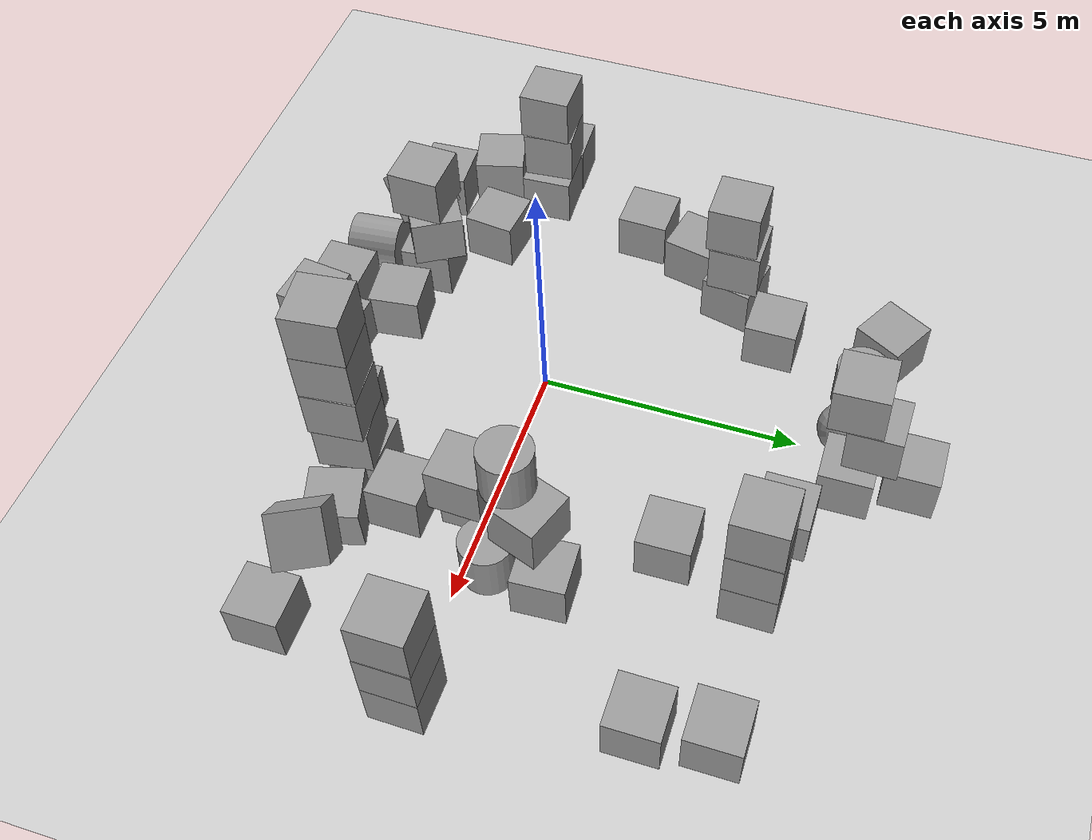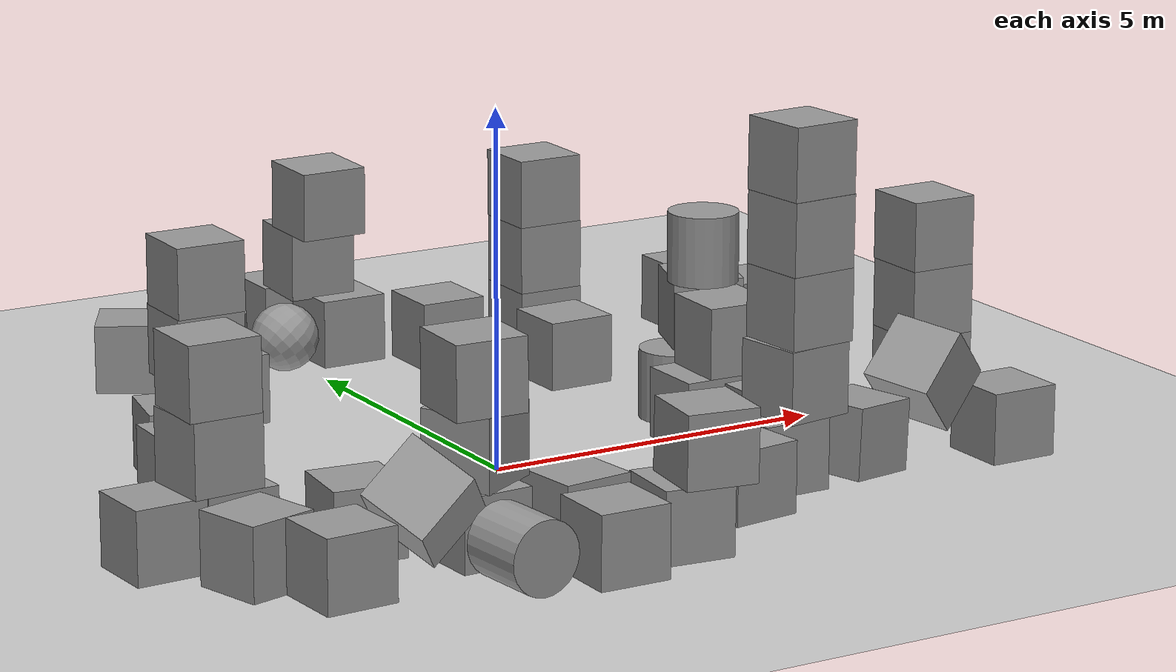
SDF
<sdf version="1.7">
 <world name="default">
  <light name="sun" type="directional">
   <pose>0 0 10 0 -0 0</pose>
   <diffuse>0.8 0.8 0.8 1</diffuse>
   <specular>0.2 0.2 0.2 1</specular>
   <attenuation>
    <range>1000</range>
    <constant>0.9</constant>
    <linear>0.01</linear>
    <quadratic>0.001</quadratic>
   </attenuation>
   <direction>-0.5 0.1 -0.9</direction>
   <spot><inner_angle>0</inner_angle><outer_angle>0</outer_angle><falloff>0</falloff></spot>
  </light>
  <model name="ground_plane">
   <static>1</static>
   <link name="link">
    <collision name="collision">
     <geometry><plane><normal>0 0 1</normal><size>100 100</size></plane></geometry>
     <surface>
      <contact><collide_bitmask>65535</collide_bitmask></contact>
      <friction><ode><mu>100</mu><mu2>50</mu2></ode></friction>
     </surface>
    </collision>
    <visual name="visual">
     <cast_shadows>0</cast_shadows>
     <geometry><plane><normal>0 0 1</normal><size>100 100</size></plane></geometry>
     <material>
      <script><uri>file://media/materials/scripts/gazebo.material</uri><name>Gazebo/Grey</name></script>
     </material>
    </visual>
   </link>
  </model>
  <gravity>0 0 -9.8</gravity>
  <magnetic_field>6e-06 2.3e-05 -4.2e-05</magnetic_field>
  <atmosphere type="adiabatic"/>
  <physics type="ode">
   <max_step_size>0.001</max_step_size>
   <real_time_factor>1</real_time_factor>
   <real_time_update_rate>1000</real_time_update_rate>
  </physics>
  <scene><ambient>0.4 0.4 0.4 1</ambient><background>0.7 0.7 0.7 1</background><shadows>1</shadows></scene>
  <spherical_coordinates>
   <surface_model>EARTH_WGS84</surface_model>
   <latitude_deg>0</latitude_deg>
   <longitude_deg>0</longitude_deg>
   <elevation>0</elevation>
   <heading_deg>0</heading_deg>
  </spherical_coordinates>
  <model name="unit_box">
   <pose>3.54485 -1.46317 0.52211 -0.014819 -0.029988 -0.004398</pose>
   <link name="link">
    <inertial>
     <mass>1</mass>
     <inertia>
      <ixx>0.166667</ixx>
      <ixy>0</ixy>
      <ixz>0</ixz>
      <iyy>0.166667</iyy>
      <iyz>0</iyz>
      <izz>0.166667</izz>
     </inertia>
    </inertial>
    <collision name="collision"><geometry><box><size>1 1 1</size></box></geometry></collision>
    <visual name="visual">
     <geometry><box><size>1 1 1</size></box></geometry>
     <material>
      <script><name>Gazebo/Grey</name><uri>file://media/materials/scripts/gazebo.material</uri></script>
     </material>
    </visual>
   </link>
  </model>
  <model name="unit_box_0">
   <pose>2.86804 -2.49356 0.499534 -3e-06 0.000959 0.013659</pose>
   <link name="link">
    <inertial>
     <mass>1</mass>
     <inertia>
      <ixx>0.166667</ixx>
      <ixy>0</ixy>
      <ixz>0</ixz>
      <iyy>0.166667</iyy>
      <iyz>0</iyz>
      <izz>0.166667</izz>
     </inertia>
    </inertial>
    <collision name="collision"><geometry><box><size>1 1 1</size></box></geometry></collision>
    <visual name="visual">
     <geometry><box><size>1 1 1</size></box></geometry>
     <material>
      <script><name>Gazebo/Grey</name><uri>file://media/materials/scripts/gazebo.material</uri></script>
     </material>
    </visual>
   </link>
  </model>
  <model name="unit_box_1">
   <pose>1.86386 -3.19897 0.5 0 -0 0.124648</pose>
   <link name="link">
    <inertial>
     <mass>1</mass>
     <inertia>
      <ixx>0.166667</ixx>
      <ixy>0</ixy>
      <ixz>0</ixz>
      <iyy>0.166667</iyy>
      <iyz>0</iyz>
      <izz>0.166667</izz>
     </inertia>
    </inertial>
    <collision name="collision"><geometry><box><size>1 1 1</size></box></geometry></collision>
    <visual name="visual">
     <geometry><box><size>1 1 1</size></box></geometry>
     <material>
      <script><name>Gazebo/Grey</name><uri>file://media/materials/scripts/gazebo.material</uri></script>
     </material>
    </visual>
   </link>
  </model>
  <model name="unit_box_2">
   <pose>3.0979 -0.23145 0.500032 -0.000241 0.000178 -0.00261</pose>
   <link name="link">
    <inertial>
     <mass>1</mass>
     <inertia>
      <ixx>0.166667</ixx>
      <ixy>0</ixy>
      <ixz>0</ixz>
      <iyy>0.166667</iyy>
      <iyz>0</iyz>
      <izz>0.166667</izz>
     </inertia>
    </inertial>
    <collision name="collision"><geometry><box><size>1 1 1</size></box></geometry></collision>
    <visual name="visual">
     <geometry><box><size>1 1 1</size></box></geometry>
     <material>
      <script><name>Gazebo/Grey</name><uri>file://media/materials/scripts/gazebo.material</uri></script>
     </material>
    </visual>
   </link>
  </model>
  <model name="unit_box_3">
   <pose>4.41609 1.53859 0.5 -3e-06 4e-06 0.05292</pose>
   <link name="link">
    <inertial>
     <mass>1</mass>
     <inertia>
      <ixx>0.166667</ixx>
      <ixy>0</ixy>
      <ixz>0</ixz>
      <iyy>0.166667</iyy>
      <iyz>0</iyz>
      <izz>0.166667</izz>
     </inertia>
    </inertial>
    <collision name="collision"><geometry><box><size>1 1 1</size></box></geometry></collision>
    <visual name="visual">
     <geometry><box><size>1 1 1</size></box></geometry>
     <material>
      <script><name>Gazebo/Grey</name><uri>file://media/materials/scripts/gazebo.material</uri></script>
     </material>
    </visual>
   </link>
  </model>
  <model name="unit_cylinder">
   <pose>4.29981 0.427955 0.499249 3.9e-05 -0.000778 0.215385</pose>
   <link name="link">
    <inertial>
     <mass>1</mass>
     <inertia><ixx>0.145833</ixx><ixy>0</ixy><ixz>0</ixz><iyy>0.145833</iyy><iyz>0</iyz><izz>0.125</izz></inertia>
    </inertial>
    <collision name="collision">
     <geometry><cylinder><radius>0.5</radius><length>1</length></cylinder></geometry>
    </collision>
    <visual name="visual">
     <geometry><cylinder><radius>0.5</radius><length>1</length></cylinder></geometry>
     <material>
      <script><name>Gazebo/Grey</name><uri>file://media/materials/scripts/gazebo.material</uri></script>
     </material>
    </visual>
   </link>
  </model>
  <model name="unit_box_4">
   <pose>3.04265 3.35976 0.499995 0 -1e-05 0.014778</pose>
   <link name="link">
    <inertial>
     <mass>1</mass>
     <inertia>
      <ixx>0.166667</ixx>
      <ixy>0</ixy>
      <ixz>0</ixz>
      <iyy>0.166667</iyy>
      <iyz>0</iyz>
      <izz>0.166667</izz>
     </inertia>
    </inertial>
    <collision name="collision"><geometry><box><size>1 1 1</size></box></geometry></collision>
    <visual name="visual">
     <geometry><box><size>1 1 1</size></box></geometry>
     <material>
      <script><name>Gazebo/Grey</name><uri>file://media/materials/scripts/gazebo.material</uri></script>
     </material>
    </visual>
   </link>
  </model>
  <model name="unit_box_5">
   <pose>1.95398 5.19038 0.499995 1e-05 0 -7.1e-05</pose>
   <link name="link">
    <inertial>
     <mass>1</mass>
     <inertia>
      <ixx>0.166667</ixx>
      <ixy>0</ixy>
      <ixz>0</ixz>
      <iyy>0.166667</iyy>
      <iyz>0</iyz>
      <izz>0.166667</izz>
     </inertia>
    </inertial>
    <collision name="collision"><geometry><box><size>1 1 1</size></box></geometry></collision>
    <visual name="visual">
     <geometry><box><size>1 1 1</size></box></geometry>
     <material>
      <script><name>Gazebo/Grey</name><uri>file://media/materials/scripts/gazebo.material</uri></script>
     </material>
    </visual>
   </link>
  </model>
  <model name="unit_box_6">
   <pose>0.760691 6.06198 0.499988 -3.7e-05 1.3e-05 0.008285</pose>
   <link name="link">
    <inertial>
     <mass>1</mass>
     <inertia>
      <ixx>0.166667</ixx>
      <ixy>0</ixy>
      <ixz>0</ixz>
      <iyy>0.166667</iyy>
      <iyz>0</iyz>
      <izz>0.166667</izz>
     </inertia>
    </inertial>
    <collision name="collision"><geometry><box><size>1 1 1</size></box></geometry></collision>
    <visual name="visual">
     <geometry><box><size>1 1 1</size></box></geometry>
     <material>
      <script><name>Gazebo/Grey</name><uri>file://media/materials/scripts/gazebo.material</uri></script>
     </material>
    </visual>
   </link>
  </model>
  <model name="unit_sphere">
   <pose>-0.271245 5.79348 0.5 0.913646 -0.11949 1.68756</pose>
   <link name="link">
    <inertial>
     <mass>1</mass>
     <inertia><ixx>0.1</ixx><ixy>0</ixy><ixz>0</ixz><iyy>0.1</iyy><iyz>0</iyz><izz>0.1</izz></inertia>
    </inertial>
    <collision name="collision"><geometry><sphere><radius>0.5</radius></sphere></geometry></collision>
    <visual name="visual">
     <geometry><sphere><radius>0.5</radius></sphere></geometry>
     <material>
      <script><name>Gazebo/Grey</name><uri>file://media/materials/scripts/gazebo.material</uri></script>
     </material>
    </visual>
   </link>
  </model>
  <model name="unit_cylinder_0">
   <pose>-1.39732 5.88022 0.5 0 0 -0.09418</pose>
   <link name="link">
    <inertial>
     <mass>1</mass>
     <inertia><ixx>0.145833</ixx><ixy>0</ixy><ixz>0</ixz><iyy>0.145833</iyy><iyz>0</iyz><izz>0.125</izz></inertia>
    </inertial>
    <collision name="collision">
     <geometry><cylinder><radius>0.5</radius><length>1</length></cylinder></geometry>
    </collision>
    <visual name="visual">
     <geometry><cylinder><radius>0.5</radius><length>1</length></cylinder></geometry>
     <material>
      <script><name>Gazebo/Grey</name><uri>file://media/materials/scripts/gazebo.material</uri></script>
     </material>
    </visual>
   </link>
  </model>
  <model name="unit_box_7">
   <pose>-2.15902 4.01624 0.499971 -0 -0 -0.013793</pose>
   <link name="link">
    <inertial>
     <mass>1</mass>
     <inertia>
      <ixx>0.166667</ixx>
      <ixy>0</ixy>
      <ixz>0</ixz>
      <iyy>0.166667</iyy>
      <iyz>0</iyz>
      <izz>0.166667</izz>
     </inertia>
    </inertial>
    <collision name="collision"><geometry><box><size>1 1 1</size></box></geometry></collision>
    <visual name="visual">
     <geometry><box><size>1 1 1</size></box></geometry>
     <material>
      <script><name>Gazebo/Grey</name><uri>file://media/materials/scripts/gazebo.material</uri></script>
     </material>
    </visual>
   </link>
  </model>
  <model name="unit_box_8">
   <pose>-2.99168 3.01634 0.499981 8e-06 -5e-06 -0.219019</pose>
   <link name="link">
    <inertial>
     <mass>1</mass>
     <inertia>
      <ixx>0.166667</ixx>
      <ixy>0</ixy>
      <ixz>0</ixz>
      <iyy>0.166667</iyy>
      <iyz>0</iyz>
      <izz>0.166667</izz>
     </inertia>
    </inertial>
    <collision name="collision"><geometry><box><size>1 1 1</size></box></geometry></collision>
    <visual name="visual">
     <geometry><box><size>1 1 1</size></box></geometry>
     <material>
      <script><name>Gazebo/Grey</name><uri>file://media/materials/scripts/gazebo.material</uri></script>
     </material>
    </visual>
   </link>
  </model>
  <model name="unit_box_9">
   <pose>-4.21059 0.855381 0.5 0 -0 -0.039085</pose>
   <link name="link">
    <inertial>
     <mass>1</mass>
     <inertia>
      <ixx>0.166667</ixx>
      <ixy>0</ixy>
      <ixz>0</ixz>
      <iyy>0.166667</iyy>
      <iyz>0</iyz>
      <izz>0.166667</izz>
     </inertia>
    </inertial>
    <collision name="collision"><geometry><box><size>1 1 1</size></box></geometry></collision>
    <visual name="visual">
     <geometry><box><size>1 1 1</size></box></geometry>
     <material>
      <script><name>Gazebo/Grey</name><uri>file://media/materials/scripts/gazebo.material</uri></script>
     </material>
    </visual>
   </link>
  </model>
  <model name="unit_box_10">
   <pose>-3.7913 2.01757 0.499995 1e-05 -0 -0.201712</pose>
   <link name="link">
    <inertial>
     <mass>1</mass>
     <inertia>
      <ixx>0.166667</ixx>
      <ixy>0</ixy>
      <ixz>0</ixz>
      <iyy>0.166667</iyy>
      <iyz>0</iyz>
      <izz>0.166667</izz>
     </inertia>
    </inertial>
    <collision name="collision"><geometry><box><size>1 1 1</size></box></geometry></collision>
    <visual name="visual">
     <geometry><box><size>1 1 1</size></box></geometry>
     <material>
      <script><name>Gazebo/Grey</name><uri>file://media/materials/scripts/gazebo.material</uri></script>
     </material>
    </visual>
   </link>
  </model>
  <model name="unit_box_11">
   <pose>-5.77779 -1.48193 0.499961 -2.2e-05 3e-05 0.042203</pose>
   <link name="link">
    <inertial>
     <mass>1</mass>
     <inertia>
      <ixx>0.166667</ixx>
      <ixy>0</ixy>
      <ixz>0</ixz>
      <iyy>0.166667</iyy>
      <iyz>0</iyz>
      <izz>0.166667</izz>
     </inertia>
    </inertial>
    <collision name="collision"><geometry><box><size>1 1 1</size></box></geometry></collision>
    <visual name="visual">
     <geometry><box><size>1 1 1</size></box></geometry>
     <material>
      <script><name>Gazebo/Grey</name><uri>file://media/materials/scripts/gazebo.material</uri></script>
     </material>
    </visual>
   </link>
  </model>
  <model name="unit_box_12">
   <pose>-4.99761 -1.50152 2.49992 1e-06 -4.9e-05 0.002113</pose>
   <link name="link">
    <inertial>
     <mass>1</mass>
     <inertia>
      <ixx>0.166667</ixx>
      <ixy>0</ixy>
      <ixz>0</ixz>
      <iyy>0.166667</iyy>
      <iyz>0</iyz>
      <izz>0.166667</izz>
     </inertia>
    </inertial>
    <collision name="collision"><geometry><box><size>1 1 1</size></box></geometry></collision>
    <visual name="visual">
     <geometry><box><size>1 1 1</size></box></geometry>
     <material>
      <script><name>Gazebo/Grey</name><uri>file://media/materials/scripts/gazebo.material</uri></script>
     </material>
    </visual>
   </link>
  </model>
  <model name="unit_box_13">
   <pose>-0.717558 -3.26427 0.5 -1.5708 -0 0.114412</pose>
   <link name="link">
    <inertial>
     <mass>1</mass>
     <inertia>
      <ixx>0.166667</ixx>
      <ixy>0</ixy>
      <ixz>0</ixz>
      <iyy>0.166667</iyy>
      <iyz>0</iyz>
      <izz>0.166667</izz>
     </inertia>
    </inertial>
    <collision name="collision"><geometry><box><size>1 1 1</size></box></geometry></collision>
    <visual name="visual">
     <geometry><box><size>1 1 1</size></box></geometry>
     <material>
      <script><name>Gazebo/Grey</name><uri>file://media/materials/scripts/gazebo.material</uri></script>
     </material>
    </visual>
   </link>
  </model>
  <model name="unit_box_14">
   <pose>-0.89779 -4.54471 0.499995 -0 1e-05 -0.009906</pose>
   <link name="link">
    <inertial>
     <mass>1</mass>
     <inertia>
      <ixx>0.166667</ixx>
      <ixy>0</ixy>
      <ixz>0</ixz>
      <iyy>0.166667</iyy>
      <iyz>0</iyz>
      <izz>0.166667</izz>
     </inertia>
    </inertial>
    <collision name="collision"><geometry><box><size>1 1 1</size></box></geometry></collision>
    <visual name="visual">
     <geometry><box><size>1 1 1</size></box></geometry>
     <material>
      <script><name>Gazebo/Grey</name><uri>file://media/materials/scripts/gazebo.material</uri></script>
     </material>
    </visual>
   </link>
  </model>
  <model name="unit_box_15">
   <pose>-2.06437 -3.10619 0.499997 6e-06 -0 0.049704</pose>
   <link name="link">
    <inertial>
     <mass>1</mass>
     <inertia>
      <ixx>0.166667</ixx>
      <ixy>0</ixy>
      <ixz>0</ixz>
      <iyy>0.166667</iyy>
      <iyz>0</iyz>
      <izz>0.166667</izz>
     </inertia>
    </inertial>
    <collision name="collision"><geometry><box><size>1 1 1</size></box></geometry></collision>
    <visual name="visual">
     <geometry><box><size>1 1 1</size></box></geometry>
     <material>
      <script><name>Gazebo/Grey</name><uri>file://media/materials/scripts/gazebo.material</uri></script>
     </material>
    </visual>
   </link>
  </model>
  <model name="unit_box_16">
   <pose>-3.25793 -2.115 0.5 0 0 -0.109062</pose>
   <link name="link">
    <inertial>
     <mass>1</mass>
     <inertia>
      <ixx>0.166667</ixx>
      <ixy>0</ixy>
      <ixz>0</ixz>
      <iyy>0.166667</iyy>
      <iyz>0</iyz>
      <izz>0.166667</izz>
     </inertia>
    </inertial>
    <collision name="collision"><geometry><box><size>1 1 1</size></box></geometry></collision>
    <visual name="visual">
     <geometry><box><size>1 1 1</size></box></geometry>
     <material>
      <script><name>Gazebo/Grey</name><uri>file://media/materials/scripts/gazebo.material</uri></script>
     </material>
    </visual>
   </link>
  </model>
  <model name="unit_box_17">
   <pose>-4.25409 -3.61877 0.500002 -1e-06 -6e-06 0.05154</pose>
   <link name="link">
    <inertial>
     <mass>1</mass>
     <inertia>
      <ixx>0.166667</ixx>
      <ixy>0</ixy>
      <ixz>0</ixz>
      <iyy>0.166667</iyy>
      <iyz>0</iyz>
      <izz>0.166667</izz>
     </inertia>
    </inertial>
    <collision name="collision"><geometry><box><size>1 1 1</size></box></geometry></collision>
    <visual name="visual">
     <geometry><box><size>1 1 1</size></box></geometry>
     <material>
      <script><name>Gazebo/Grey</name><uri>file://media/materials/scripts/gazebo.material</uri></script>
     </material>
    </visual>
   </link>
  </model>
  <model name="unit_box_18">
   <pose>6.41642 3.81657 0.499995 -1e-05 -0 -0</pose>
   <link name="link">
    <inertial>
     <mass>1</mass>
     <inertia>
      <ixx>0.166667</ixx>
      <ixy>0</ixy>
      <ixz>0</ixz>
      <iyy>0.166667</iyy>
      <iyz>0</iyz>
      <izz>0.166667</izz>
     </inertia>
    </inertial>
    <collision name="collision"><geometry><box><size>1 1 1</size></box></geometry></collision>
    <visual name="visual">
     <geometry><box><size>1 1 1</size></box></geometry>
     <material>
      <script><name>Gazebo/Grey</name><uri>file://media/materials/scripts/gazebo.material</uri></script>
     </material>
    </visual>
   </link>
  </model>
  <model name="unit_box_19">
   <pose>6.25838 5.09968 0.499995 0 1e-05 0</pose>
   <link name="link">
    <inertial>
     <mass>1</mass>
     <inertia>
      <ixx>0.166667</ixx>
      <ixy>0</ixy>
      <ixz>0</ixz>
      <iyy>0.166667</iyy>
      <iyz>0</iyz>
      <izz>0.166667</izz>
     </inertia>
    </inertial>
    <collision name="collision"><geometry><box><size>1 1 1</size></box></geometry></collision>
    <visual name="visual">
     <geometry><box><size>1 1 1</size></box></geometry>
     <material>
      <script><name>Gazebo/Grey</name><uri>file://media/materials/scripts/gazebo.material</uri></script>
     </material>
    </visual>
   </link>
  </model>
  <model name="unit_box_20">
   <pose>7.00111 -0.002061 0.499996 3e-06 -5e-06 -0.012454</pose>
   <link name="link">
    <inertial>
     <mass>1</mass>
     <inertia>
      <ixx>0.166667</ixx>
      <ixy>0</ixy>
      <ixz>0</ixz>
      <iyy>0.166667</iyy>
      <iyz>0</iyz>
      <izz>0.166667</izz>
     </inertia>
    </inertial>
    <collision name="collision"><geometry><box><size>1 1 1</size></box></geometry></collision>
    <visual name="visual">
     <geometry><box><size>1 1 1</size></box></geometry>
     <material>
      <script><name>Gazebo/Grey</name><uri>file://media/materials/scripts/gazebo.material</uri></script>
     </material>
    </visual>
   </link>
  </model>
  <model name="unit_box_21">
   <pose>6.99981 -0.005387 1.49999 -1e-06 1e-05 -0.010588</pose>
   <link name="link">
    <inertial>
     <mass>1</mass>
     <inertia>
      <ixx>0.166667</ixx>
      <ixy>0</ixy>
      <ixz>0</ixz>
      <iyy>0.166667</iyy>
      <iyz>0</iyz>
      <izz>0.166667</izz>
     </inertia>
    </inertial>
    <collision name="collision"><geometry><box><size>1 1 1</size></box></geometry></collision>
    <visual name="visual">
     <geometry><box><size>1 1 1</size></box></geometry>
     <material>
      <script><name>Gazebo/Grey</name><uri>file://media/materials/scripts/gazebo.material</uri></script>
     </material>
    </visual>
   </link>
  </model>
  <model name="unit_box_22">
   <pose>6.98836 -0.007519 2.49999 7e-06 1e-05 -0.002652</pose>
   <link name="link">
    <inertial>
     <mass>1</mass>
     <inertia>
      <ixx>0.166667</ixx>
      <ixy>0</ixy>
      <ixz>0</ixz>
      <iyy>0.166667</iyy>
      <iyz>0</iyz>
      <izz>0.166667</izz>
     </inertia>
    </inertial>
    <collision name="collision"><geometry><box><size>1 1 1</size></box></geometry></collision>
    <visual name="visual">
     <geometry><box><size>1 1 1</size></box></geometry>
     <material>
      <script><name>Gazebo/Grey</name><uri>file://media/materials/scripts/gazebo.material</uri></script>
     </material>
    </visual>
   </link>
  </model>
  <model name="unit_box_23">
   <pose>3.5021 5.00241 0.500024 4.5e-05 -3e-06 -0.007851</pose>
   <link name="link">
    <inertial>
     <mass>1</mass>
     <inertia>
      <ixx>0.166667</ixx>
      <ixy>0</ixy>
      <ixz>0</ixz>
      <iyy>0.166667</iyy>
      <iyz>0</iyz>
      <izz>0.166667</izz>
     </inertia>
    </inertial>
    <collision name="collision"><geometry><box><size>1 1 1</size></box></geometry></collision>
    <visual name="visual">
     <geometry><box><size>1 1 1</size></box></geometry>
     <material>
      <script><name>Gazebo/Grey</name><uri>file://media/materials/scripts/gazebo.material</uri></script>
     </material>
    </visual>
   </link>
  </model>
  <model name="unit_box_24">
   <pose>3.49969 5.00237 1.50002 4.5e-05 -3e-06 -0.008608</pose>
   <link name="link">
    <inertial>
     <mass>1</mass>
     <inertia>
      <ixx>0.166667</ixx>
      <ixy>0</ixy>
      <ixz>0</ixz>
      <iyy>0.166667</iyy>
      <iyz>0</iyz>
      <izz>0.166667</izz>
     </inertia>
    </inertial>
    <collision name="collision"><geometry><box><size>1 1 1</size></box></geometry></collision>
    <visual name="visual">
     <geometry><box><size>1 1 1</size></box></geometry>
     <material>
      <script><name>Gazebo/Grey</name><uri>file://media/materials/scripts/gazebo.material</uri></script>
     </material>
    </visual>
   </link>
  </model>
  <model name="unit_box_25">
   <pose>3.48964 5.00129 2.50002 6.2e-05 1.4e-05 -0.003563</pose>
   <link name="link">
    <inertial>
     <mass>1</mass>
     <inertia>
      <ixx>0.166667</ixx>
      <ixy>0</ixy>
      <ixz>0</ixz>
      <iyy>0.166667</iyy>
      <iyz>0</iyz>
      <izz>0.166667</izz>
     </inertia>
    </inertial>
    <collision name="collision"><geometry><box><size>1 1 1</size></box></geometry></collision>
    <visual name="visual">
     <geometry><box><size>1 1 1</size></box></geometry>
     <material>
      <script><name>Gazebo/Grey</name><uri>file://media/materials/scripts/gazebo.material</uri></script>
     </material>
    </visual>
   </link>
  </model>
  <model name="unit_box_20_clone">
   <pose>6.39042 -2.76969 0.499948 1.2e-05 -1.1e-05 0.00515</pose>
   <link name="link">
    <inertial>
     <mass>1</mass>
     <inertia>
      <ixx>0.166667</ixx>
      <ixy>0</ixy>
      <ixz>0</ixz>
      <iyy>0.166667</iyy>
      <iyz>0</iyz>
      <izz>0.166667</izz>
     </inertia>
    </inertial>
    <collision name="collision"><geometry><box><size>1 1 1</size></box></geometry></collision>
    <visual name="visual">
     <geometry><box><size>1 1 1</size></box></geometry>
     <material>
      <script><name>Gazebo/Grey</name><uri>file://media/materials/scripts/gazebo.material</uri></script>
     </material>
    </visual>
   </link>
  </model>
  <model name="unit_box_26">
   <pose>-3.00172 3.03042 1.49362 0.0026 -0.000871 -0.015972</pose>
   <link name="link">
    <inertial>
     <mass>1</mass>
     <inertia>
      <ixx>0.166667</ixx>
      <ixy>0</ixy>
      <ixz>0</ixz>
      <iyy>0.166667</iyy>
      <iyz>0</iyz>
      <izz>0.166667</izz>
     </inertia>
    </inertial>
    <collision name="collision"><geometry><box><size>1 1 1</size></box></geometry></collision>
    <visual name="visual">
     <geometry><box><size>1 1 1</size></box></geometry>
     <material>
      <script><name>Gazebo/Grey</name><uri>file://media/materials/scripts/gazebo.material</uri></script>
     </material>
    </visual>
   </link>
  </model>
  <model name="unit_box_27">
   <pose>-3.03301 2.94298 2.49334 0.002603 -0.000897 -0.007415</pose>
   <link name="link">
    <inertial>
     <mass>1</mass>
     <inertia>
      <ixx>0.166667</ixx>
      <ixy>0</ixy>
      <ixz>0</ixz>
      <iyy>0.166667</iyy>
      <iyz>0</iyz>
      <izz>0.166667</izz>
     </inertia>
    </inertial>
    <collision name="collision"><geometry><box><size>1 1 1</size></box></geometry></collision>
    <visual name="visual">
     <geometry><box><size>1 1 1</size></box></geometry>
     <material>
      <script><name>Gazebo/Grey</name><uri>file://media/materials/scripts/gazebo.material</uri></script>
     </material>
    </visual>
   </link>
  </model>
  <model name="unit_box_28">
   <pose>-4.7777 -1.4597 0.500001 -1.13455 1.57079 -1.09236</pose>
   <link name="link">
    <inertial>
     <mass>1</mass>
     <inertia>
      <ixx>0.166667</ixx>
      <ixy>0</ixy>
      <ixz>0</ixz>
      <iyy>0.166667</iyy>
      <iyz>0</iyz>
      <izz>0.166667</izz>
     </inertia>
    </inertial>
    <collision name="collision"><geometry><box><size>1 1 1</size></box></geometry></collision>
    <visual name="visual">
     <geometry><box><size>1 1 1</size></box></geometry>
     <material>
      <script><name>Gazebo/Grey</name><uri>file://media/materials/scripts/gazebo.material</uri></script>
     </material>
    </visual>
   </link>
  </model>
  <model name="unit_box_29">
   <pose>-4.99428 -1.4804 1.49995 -1.57075 -4e-06 -1.49013</pose>
   <link name="link">
    <inertial>
     <mass>1</mass>
     <inertia>
      <ixx>0.166667</ixx>
      <ixy>0</ixy>
      <ixz>0</ixz>
      <iyy>0.166667</iyy>
      <iyz>0</iyz>
      <izz>0.166667</izz>
     </inertia>
    </inertial>
    <collision name="collision"><geometry><box><size>1 1 1</size></box></geometry></collision>
    <visual name="visual">
     <geometry><box><size>1 1 1</size></box></geometry>
     <material>
      <script><name>Gazebo/Grey</name><uri>file://media/materials/scripts/gazebo.material</uri></script>
     </material>
    </visual>
   </link>
  </model>
  <model name="unit_box_30">
   <pose>-4.93747 -2.66985 0.499995 -1.5708 -0 1.82889</pose>
   <link name="link">
    <inertial>
     <mass>1</mass>
     <inertia>
      <ixx>0.166667</ixx>
      <ixy>0</ixy>
      <ixz>0</ixz>
      <iyy>0.166667</iyy>
      <iyz>0</iyz>
      <izz>0.166667</izz>
     </inertia>
    </inertial>
    <collision name="collision"><geometry><box><size>1 1 1</size></box></geometry></collision>
    <visual name="visual">
     <geometry><box><size>1 1 1</size></box></geometry>
     <material>
      <script><name>Gazebo/Grey</name><uri>file://media/materials/scripts/gazebo.material</uri></script>
     </material>
    </visual>
   </link>
  </model>
  <model name="unit_box_31">
   <pose>-2.11252 -3.12973 2.49402 -1.5669 -0.002142 -0.040516</pose>
   <link name="link">
    <inertial>
     <mass>1</mass>
     <inertia>
      <ixx>0.166667</ixx>
      <ixy>0</ixy>
      <ixz>0</ixz>
      <iyy>0.166667</iyy>
      <iyz>0</iyz>
      <izz>0.166667</izz>
     </inertia>
    </inertial>
    <collision name="collision"><geometry><box><size>1 1 1</size></box></geometry></collision>
    <visual name="visual">
     <geometry><box><size>1 1 1</size></box></geometry>
     <material>
      <script><name>Gazebo/Grey</name><uri>file://media/materials/scripts/gazebo.material</uri></script>
     </material>
    </visual>
   </link>
  </model>
  <model name="unit_cylinder_1">
   <pose>-2.11995 -4.35649 0.499948 -1.5707 -0.47838 0.090384</pose>
   <link name="link">
    <inertial>
     <mass>1</mass>
     <inertia><ixx>0.145833</ixx><ixy>0</ixy><ixz>0</ixz><iyy>0.145833</iyy><iyz>0</iyz><izz>0.125</izz></inertia>
    </inertial>
    <collision name="collision">
     <geometry><cylinder><radius>0.5</radius><length>1</length></cylinder></geometry>
    </collision>
    <visual name="visual">
     <geometry><cylinder><radius>0.5</radius><length>1</length></cylinder></geometry>
     <material>
      <script><name>Gazebo/Grey</name><uri>file://media/materials/scripts/gazebo.material</uri></script>
     </material>
    </visual>
   </link>
  </model>
  <model name="unit_box_32">
   <pose>-3.19739 -3.77598 1.13225 0.752314 -0.456705 2.06267</pose>
   <link name="link">
    <inertial>
     <mass>1</mass>
     <inertia>
      <ixx>0.166667</ixx>
      <ixy>0</ixy>
      <ixz>0</ixz>
      <iyy>0.166667</iyy>
      <iyz>0</iyz>
      <izz>0.166667</izz>
     </inertia>
    </inertial>
    <collision name="collision"><geometry><box><size>1 1 1</size></box></geometry></collision>
    <visual name="visual">
     <geometry><box><size>1 1 1</size></box></geometry>
     <material>
      <script><name>Gazebo/Grey</name><uri>file://media/materials/scripts/gazebo.material</uri></script>
     </material>
    </visual>
   </link>
  </model>
  <model name="unit_box_33">
   <pose>3.11943 -2.52925 1.49811 -3.14142 0.002053 0.149885</pose>
   <link name="link">
    <inertial>
     <mass>1</mass>
     <inertia>
      <ixx>0.166667</ixx>
      <ixy>0</ixy>
      <ixz>0</ixz>
      <iyy>0.166667</iyy>
      <iyz>0</iyz>
      <izz>0.166667</izz>
     </inertia>
    </inertial>
    <collision name="collision"><geometry><box><size>1 1 1</size></box></geometry></collision>
    <visual name="visual">
     <geometry><box><size>1 1 1</size></box></geometry>
     <material>
      <script><name>Gazebo/Grey</name><uri>file://media/materials/scripts/gazebo.material</uri></script>
     </material>
    </visual>
   </link>
  </model>
  <model name="unit_box_34">
   <pose>4.15873 -2.46568 0.526924 -0.004011 0.058106 0.275021</pose>
   <link name="link">
    <inertial>
     <mass>1</mass>
     <inertia>
      <ixx>0.166667</ixx>
      <ixy>0</ixy>
      <ixz>0</ixz>
      <iyy>0.166667</iyy>
      <iyz>0</iyz>
      <izz>0.166667</izz>
     </inertia>
    </inertial>
    <collision name="collision"><geometry><box><size>1 1 1</size></box></geometry></collision>
    <visual name="visual">
     <geometry><box><size>1 1 1</size></box></geometry>
     <material>
      <script><name>Gazebo/Grey</name><uri>file://media/materials/scripts/gazebo.material</uri></script>
     </material>
    </visual>
   </link>
  </model>
  <model name="unit_box_20_clone_0">
   <pose>3.18196 -2.52141 2.49795 -3.14155 0.002067 0.086935</pose>
   <link name="link">
    <inertial>
     <mass>1</mass>
     <inertia>
      <ixx>0.166667</ixx>
      <ixy>0</ixy>
      <ixz>0</ixz>
      <iyy>0.166667</iyy>
      <iyz>0</iyz>
      <izz>0.166667</izz>
     </inertia>
    </inertial>
    <collision name="collision"><geometry><box><size>1 1 1</size></box></geometry></collision>
    <visual name="visual">
     <geometry><box><size>1 1 1</size></box></geometry>
     <material>
      <script><name>Gazebo/Grey</name><uri>file://media/materials/scripts/gazebo.material</uri></script>
     </material>
    </visual>
   </link>
  </model>
  <model name="unit_box_35">
   <pose>5.21556 -2.51142 1.23104 0.160552 -0.77745 0.281737</pose>
   <link name="link">
    <inertial>
     <mass>1</mass>
     <inertia>
      <ixx>0.166667</ixx>
      <ixy>0</ixy>
      <ixz>0</ixz>
      <iyy>0.166667</iyy>
      <iyz>0</iyz>
      <izz>0.166667</izz>
     </inertia>
    </inertial>
    <collision name="collision"><geometry><box><size>1 1 1</size></box></geometry></collision>
    <visual name="visual">
     <geometry><box><size>1 1 1</size></box></geometry>
     <material>
      <script><name>Gazebo/Grey</name><uri>file://media/materials/scripts/gazebo.material</uri></script>
     </material>
    </visual>
   </link>
  </model>
  <model name="unit_box_36">
   <pose>-2.00913 -2.96433 1.49491 -0.002128 0.003877 -2.61608</pose>
   <link name="link">
    <inertial>
     <mass>1</mass>
     <inertia>
      <ixx>0.166667</ixx>
      <ixy>0</ixy>
      <ixz>0</ixz>
      <iyy>0.166667</iyy>
      <iyz>0</iyz>
      <izz>0.166667</izz>
     </inertia>
    </inertial>
    <collision name="collision"><geometry><box><size>1 1 1</size></box></geometry></collision>
    <visual name="visual">
     <geometry><box><size>1 1 1</size></box></geometry>
     <material>
      <script><name>Gazebo/Grey</name><uri>file://media/materials/scripts/gazebo.material</uri></script>
     </material>
    </visual>
   </link>
  </model>
  <model name="unit_box_37">
   <pose>0.446636 6.4132 1.48609 1.57021 -0.023515 1.55294</pose>
   <link name="link">
    <inertial>
     <mass>1</mass>
     <inertia>
      <ixx>0.166667</ixx>
      <ixy>0</ixy>
      <ixz>0</ixz>
      <iyy>0.166667</iyy>
      <iyz>0</iyz>
      <izz>0.166667</izz>
     </inertia>
    </inertial>
    <collision name="collision"><geometry><box><size>1 1 1</size></box></geometry></collision>
    <visual name="visual">
     <geometry><box><size>1 1 1</size></box></geometry>
     <material>
      <script><name>Gazebo/Grey</name><uri>file://media/materials/scripts/gazebo.material</uri></script>
     </material>
    </visual>
   </link>
  </model>
  <model name="unit_box_38">
   <pose>3.16815 -2.53853 3.5039 -3.14141 0.009113 0.099443</pose>
   <link name="link">
    <inertial>
     <mass>1</mass>
     <inertia>
      <ixx>0.166667</ixx>
      <ixy>0</ixy>
      <ixz>0</ixz>
      <iyy>0.166667</iyy>
      <iyz>0</iyz>
      <izz>0.166667</izz>
     </inertia>
    </inertial>
    <collision name="collision"><geometry><box><size>1 1 1</size></box></geometry></collision>
    <visual name="visual">
     <geometry><box><size>1 1 1</size></box></geometry>
     <material>
      <script><name>Gazebo/Grey</name><uri>file://media/materials/scripts/gazebo.material</uri></script>
     </material>
    </visual>
   </link>
  </model>
  <model name="unit_box_39">
   <pose>3.17316 -2.53118 4.50493 3.12439 1.55959 -3.05798</pose>
   <link name="link">
    <inertial>
     <mass>1</mass>
     <inertia>
      <ixx>0.166667</ixx>
      <ixy>0</ixy>
      <ixz>0</ixz>
      <iyy>0.166667</iyy>
      <iyz>0</iyz>
      <izz>0.166667</izz>
     </inertia>
    </inertial>
    <collision name="collision"><geometry><box><size>1 1 1</size></box></geometry></collision>
    <visual name="visual">
     <geometry><box><size>1 1 1</size></box></geometry>
     <material>
      <script><name>Gazebo/Grey</name><uri>file://media/materials/scripts/gazebo.material</uri></script>
     </material>
    </visual>
   </link>
  </model>
  <model name="unit_box_40">
   <pose>3.95255 1.11107 1.49716 3.14141 0.000815 2.80108</pose>
   <link name="link">
    <inertial>
     <mass>1</mass>
     <inertia>
      <ixx>0.166667</ixx>
      <ixy>0</ixy>
      <ixz>0</ixz>
      <iyy>0.166667</iyy>
      <iyz>0</iyz>
      <izz>0.166667</izz>
     </inertia>
    </inertial>
    <collision name="collision"><geometry><box><size>1 1 1</size></box></geometry></collision>
    <visual name="visual">
     <geometry><box><size>1 1 1</size></box></geometry>
     <material>
      <script><name>Gazebo/Grey</name><uri>file://media/materials/scripts/gazebo.material</uri></script>
     </material>
    </visual>
   </link>
  </model>
  <model name="unit_box_41">
   <pose>-2.50111 6.25082 0.5 -0.506683 -1.57079 3.14159</pose>
   <link name="link">
    <inertial>
     <mass>1</mass>
     <inertia>
      <ixx>0.166667</ixx>
      <ixy>0</ixy>
      <ixz>0</ixz>
      <iyy>0.166667</iyy>
      <iyz>0</iyz>
      <izz>0.166667</izz>
     </inertia>
    </inertial>
    <collision name="collision"><geometry><box><size>1 1 1</size></box></geometry></collision>
    <visual name="visual">
     <geometry><box><size>1 1 1</size></box></geometry>
     <material>
      <script><name>Gazebo/Grey</name><uri>file://media/materials/scripts/gazebo.material</uri></script>
     </material>
    </visual>
   </link>
  </model>
  <model name="unit_box_42">
   <pose>0.565187 -4.339 1.49021 -0.00456 -0.008048 3.02057</pose>
   <link name="link">
    <inertial>
     <mass>1</mass>
     <inertia>
      <ixx>0.166667</ixx>
      <ixy>0</ixy>
      <ixz>0</ixz>
      <iyy>0.166667</iyy>
      <iyz>0</iyz>
      <izz>0.166667</izz>
     </inertia>
    </inertial>
    <collision name="collision"><geometry><box><size>1 1 1</size></box></geometry></collision>
    <visual name="visual">
     <geometry><box><size>1 1 1</size></box></geometry>
     <material>
      <script><name>Gazebo/Grey</name><uri>file://media/materials/scripts/gazebo.material</uri></script>
     </material>
    </visual>
   </link>
  </model>
  <model name="unit_box_43">
   <pose>0.32532 -4.15968 0.492962 0.0049 0.007804 -0.075829</pose>
   <link name="link">
    <inertial>
     <mass>1</mass>
     <inertia>
      <ixx>0.166667</ixx>
      <ixy>0</ixy>
      <ixz>0</ixz>
      <iyy>0.166667</iyy>
      <iyz>0</iyz>
      <izz>0.166667</izz>
     </inertia>
    </inertial>
    <collision name="collision"><geometry><box><size>1 1 1</size></box></geometry></collision>
    <visual name="visual">
     <geometry><box><size>1 1 1</size></box></geometry>
     <material>
      <script><name>Gazebo/Grey</name><uri>file://media/materials/scripts/gazebo.material</uri></script>
     </material>
    </visual>
   </link>
  </model>
  <model name="unit_box_44">
   <pose>3.47041 -0.2469 1.49954 3.14069 0.000171 -0.040612</pose>
   <link name="link">
    <inertial>
     <mass>1</mass>
     <inertia>
      <ixx>0.166667</ixx>
      <ixy>0</ixy>
      <ixz>0</ixz>
      <iyy>0.166667</iyy>
      <iyz>0</iyz>
      <izz>0.166667</izz>
     </inertia>
    </inertial>
    <collision name="collision"><geometry><box><size>1 1 1</size></box></geometry></collision>
    <visual name="visual">
     <geometry><box><size>1 1 1</size></box></geometry>
     <material>
      <script><name>Gazebo/Grey</name><uri>file://media/materials/scripts/gazebo.material</uri></script>
     </material>
    </visual>
   </link>
  </model>
  <model name="unit_box_45">
   <pose>0.428945 6.01935 2.47705 -1.62619 1.54723 1.52813</pose>
   <link name="link">
    <inertial>
     <mass>1</mass>
     <inertia>
      <ixx>0.166667</ixx>
      <ixy>0</ixy>
      <ixz>0</ixz>
      <iyy>0.166667</iyy>
      <iyz>0</iyz>
      <izz>0.166667</izz>
     </inertia>
    </inertial>
    <collision name="collision"><geometry><box><size>1 1 1</size></box></geometry></collision>
    <visual name="visual">
     <geometry><box><size>1 1 1</size></box></geometry>
     <material>
      <script><name>Gazebo/Grey</name><uri>file://media/materials/scripts/gazebo.material</uri></script>
     </material>
    </visual>
   </link>
  </model>
  <model name="unit_box_46">
   <pose>0.371831 7.19601 0.499979 -1e-06 -0 -0.000576</pose>
   <link name="link">
    <inertial>
     <mass>1</mass>
     <inertia>
      <ixx>0.166667</ixx>
      <ixy>0</ixy>
      <ixz>0</ixz>
      <iyy>0.166667</iyy>
      <iyz>0</iyz>
      <izz>0.166667</izz>
     </inertia>
    </inertial>
    <collision name="collision"><geometry><box><size>1 1 1</size></box></geometry></collision>
    <visual name="visual">
     <geometry><box><size>1 1 1</size></box></geometry>
     <material>
      <script><name>Gazebo/Grey</name><uri>file://media/materials/scripts/gazebo.material</uri></script>
     </material>
    </visual>
   </link>
  </model>
  <model name="unit_cylinder_2">
   <pose>3.41239 0.946577 0.499971 2.4e-05 -5.2e-05 -0.104006</pose>
   <link name="link">
    <inertial>
     <mass>1</mass>
     <inertia><ixx>0.145833</ixx><ixy>0</ixy><ixz>0</ixz><iyy>0.145833</iyy><iyz>0</iyz><izz>0.125</izz></inertia>
    </inertial>
    <collision name="collision">
     <geometry><cylinder><radius>0.5</radius><length>1</length></cylinder></geometry>
    </collision>
    <visual name="visual">
     <geometry><cylinder><radius>0.5</radius><length>1</length></cylinder></geometry>
     <material>
      <script><name>Gazebo/Grey</name><uri>file://media/materials/scripts/gazebo.material</uri></script>
     </material>
    </visual>
   </link>
  </model>
  <model name="unit_cylinder_3">
   <pose>3.70627 0.679462 2.49813 3.14149 0.002286 1.57129</pose>
   <link name="link">
    <inertial>
     <mass>1</mass>
     <inertia><ixx>0.145833</ixx><ixy>0</ixy><ixz>0</ixz><iyy>0.145833</iyy><iyz>0</iyz><izz>0.125</izz></inertia>
    </inertial>
    <collision name="collision">
     <geometry><cylinder><radius>0.5</radius><length>1</length></cylinder></geometry>
    </collision>
    <visual name="visual">
     <geometry><cylinder><radius>0.5</radius><length>1</length></cylinder></geometry>
     <material>
      <script><name>Gazebo/Grey</name><uri>file://media/materials/scripts/gazebo.material</uri></script>
     </material>
    </visual>
   </link>
  </model>
 </world>
</sdf>
